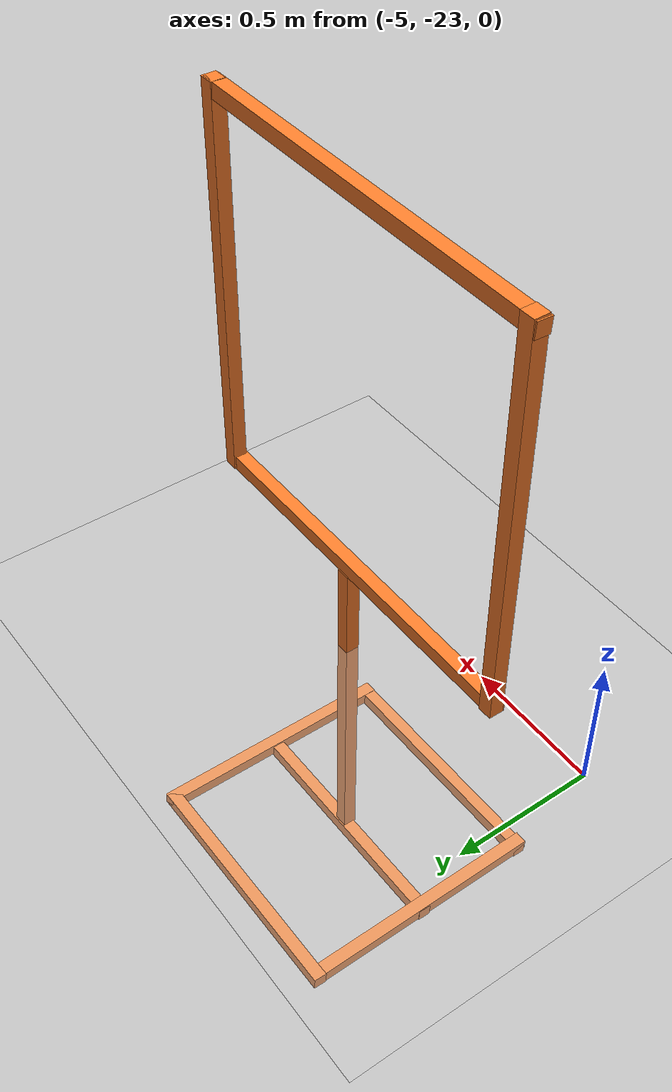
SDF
<sdf version="1.6">
 <world name="default">
  <model name="ground_plane">
   <static>1</static>
   <link name="link">
    <collision name="collision">
     <geometry><plane><normal>0 0 1</normal><size>100 100</size></plane></geometry>
     <surface><friction><ode><mu>100</mu><mu2>50</mu2></ode></friction></surface>
    </collision>
    <visual name="visual">
     <cast_shadows>0</cast_shadows>
     <geometry><plane><normal>0 0 1</normal><size>100 100</size></plane></geometry>
     <material>
      <script><uri>file://media/materials/scripts/gazebo.material</uri><name>Gazebo/Grey</name></script>
     </material>
    </visual>
    <velocity_decay><linear>0</linear><angular>0</angular></velocity_decay>
   </link>
  </model>
  <model name="closed_gate_clone_clone_0">
   <link name="link">
    <inertial>
     <mass>1</mass>
     <inertia>
      <ixx>0.166667</ixx>
      <ixy>0</ixy>
      <ixz>0</ixz>
      <iyy>0.166667</iyy>
      <iyz>0</iyz>
      <izz>0.166667</izz>
     </inertia>
    </inertial>
    <pose>0.404756 -0.715724 1.41623 0 -0 0</pose>
    <visual name="visual">
     <geometry><box><size>0.05 0.05 1.4</size></box></geometry>
     <material>
      <script><name>Gazebo/Grey</name><uri>file://media/materials/scripts/gazebo.material</uri></script>
      <shader type="vertex"><normal_map>__default__</normal_map></shader>
      <ambient>0.976 0.484 0.164 1</ambient>
      <diffuse>0.976 0.484 0.164 1</diffuse>
      <specular>0.01 0.01 0.01 1</specular>
      <emissive>0 0 0 1</emissive>
     </material>
    </visual>
    <collision name="collision">
     <geometry><box><size>0.05 0.05 1.4</size></box></geometry>
     <surface>
      <friction>
       <ode><mu>1</mu><mu2>1</mu2><fdir1>0 0 0</fdir1><slip1>0</slip1><slip2>0</slip2></ode>
       <torsional>
        <coefficient>1</coefficient>
        <patch_radius>0</patch_radius>
        <surface_radius>0</surface_radius>
        <use_patch_radius>1</use_patch_radius>
        <ode><slip>0</slip></ode>
       </torsional>
      </friction>
      <bounce><restitution_coefficient>0</restitution_coefficient><threshold>1e+06</threshold></bounce>
      <contact>
       <collide_without_contact>0</collide_without_contact>
       <collide_without_contact_bitmask>1</collide_without_contact_bitmask>
       <collide_bitmask>1</collide_bitmask>
       <ode>
        <soft_cfm>0</soft_cfm>
        <soft_erp>0.2</soft_erp>
        <kp>1e+13</kp>
        <kd>1</kd>
        <max_vel>0.01</max_vel>
        <min_depth>0</min_depth>
       </ode>
       <bullet>
        <split_impulse>1</split_impulse>
        <split_impulse_penetration_threshold>-0.01</split_impulse_penetration_threshold>
        <soft_cfm>0</soft_cfm>
        <soft_erp>0.2</soft_erp>
        <kp>1e+13</kp>
        <kd>1</kd>
       </bullet>
      </contact>
     </surface>
    </collision>
   </link>
   <link name="link_clone_0_clone_0">
    <inertial>
     <mass>1</mass>
     <inertia>
      <ixx>0.166667</ixx>
      <ixy>0</ixy>
      <ixz>0</ixz>
      <iyy>0.166667</iyy>
      <iyz>0</iyz>
      <izz>0.166667</izz>
     </inertia>
    </inertial>
    <pose>1.11096 -0.693594 -0.667388 -1.57955 0.044957 -1.56415</pose>
    <visual name="visual">
     <geometry><box><size>0.05 0.05 1</size></box></geometry>
     <material>
      <script><name>Gazebo/Grey</name><uri>file://media/materials/scripts/gazebo.material</uri></script>
      <shader type="vertex"><normal_map>__default__</normal_map></shader>
      <ambient>0.976 0.484 0.164 1</ambient>
      <diffuse>0.976 0.484 0.164 1</diffuse>
      <specular>0.01 0.01 0.01 1</specular>
      <emissive>0 0 0 1</emissive>
     </material>
    </visual>
    <collision name="collision">
     <geometry><box><size>0.05 0.05 1</size></box></geometry>
     <surface>
      <friction>
       <ode><mu>1</mu><mu2>1</mu2><fdir1>0 0 0</fdir1><slip1>0</slip1><slip2>0</slip2></ode>
       <torsional>
        <coefficient>1</coefficient>
        <patch_radius>0</patch_radius>
        <surface_radius>0</surface_radius>
        <use_patch_radius>1</use_patch_radius>
        <ode><slip>0</slip></ode>
       </torsional>
      </friction>
      <bounce><restitution_coefficient>0</restitution_coefficient><threshold>1e+06</threshold></bounce>
      <contact>
       <collide_without_contact>0</collide_without_contact>
       <collide_without_contact_bitmask>1</collide_without_contact_bitmask>
       <collide_bitmask>1</collide_bitmask>
       <ode>
        <soft_cfm>0</soft_cfm>
        <soft_erp>0.2</soft_erp>
        <kp>1e+13</kp>
        <kd>1</kd>
        <max_vel>0.01</max_vel>
        <min_depth>0</min_depth>
       </ode>
       <bullet>
        <split_impulse>1</split_impulse>
        <split_impulse_penetration_threshold>-0.01</split_impulse_penetration_threshold>
        <soft_cfm>0</soft_cfm>
        <soft_erp>0.2</soft_erp>
        <kp>1e+13</kp>
        <kd>1</kd>
       </bullet>
      </contact>
     </surface>
    </collision>
   </link>
   <link name="link_clone_0_clone_0_clone">
    <inertial>
     <mass>1</mass>
     <inertia>
      <ixx>0.166667</ixx>
      <ixy>0</ixy>
      <ixz>0</ixz>
      <iyy>0.166667</iyy>
      <iyz>0</iyz>
      <izz>0.166667</izz>
     </inertia>
    </inertial>
    <pose>0.637485 -0.695511 -0.656732 -1.55146 -0.019345 0.017432</pose>
    <visual name="visual">
     <geometry><box><size>0.05 0.05 1</size></box></geometry>
     <material>
      <script><name>Gazebo/Grey</name><uri>file://media/materials/scripts/gazebo.material</uri></script>
      <shader type="vertex"><normal_map>__default__</normal_map></shader>
      <ambient>0.976 0.484 0.164 1</ambient>
      <diffuse>0.976 0.484 0.164 1</diffuse>
      <specular>0.01 0.01 0.01 1</specular>
      <emissive>0 0 0 1</emissive>
     </material>
    </visual>
    <collision name="collision">
     <geometry><box><size>0.05 0.05 1</size></box></geometry>
     <surface>
      <friction>
       <ode><mu>1</mu><mu2>1</mu2><fdir1>0 0 0</fdir1><slip1>0</slip1><slip2>0</slip2></ode>
       <torsional>
        <coefficient>1</coefficient>
        <patch_radius>0</patch_radius>
        <surface_radius>0</surface_radius>
        <use_patch_radius>1</use_patch_radius>
        <ode><slip>0</slip></ode>
       </torsional>
      </friction>
      <bounce><restitution_coefficient>0</restitution_coefficient><threshold>1e+06</threshold></bounce>
      <contact>
       <collide_without_contact>0</collide_without_contact>
       <collide_without_contact_bitmask>1</collide_without_contact_bitmask>
       <collide_bitmask>1</collide_bitmask>
       <ode>
        <soft_cfm>0</soft_cfm>
        <soft_erp>0.2</soft_erp>
        <kp>1e+13</kp>
        <kd>1</kd>
        <max_vel>0.01</max_vel>
        <min_depth>0</min_depth>
       </ode>
       <bullet>
        <split_impulse>1</split_impulse>
        <split_impulse_penetration_threshold>-0.01</split_impulse_penetration_threshold>
        <soft_cfm>0</soft_cfm>
        <soft_erp>0.2</soft_erp>
        <kp>1e+13</kp>
        <kd>1</kd>
       </bullet>
      </contact>
     </surface>
    </collision>
   </link>
   <link name="link_clone_0_clone_0_clone_0">
    <inertial>
     <mass>1</mass>
     <inertia>
      <ixx>0.166667</ixx>
      <ixy>0</ixy>
      <ixz>0</ixz>
      <iyy>0.166667</iyy>
      <iyz>0</iyz>
      <izz>0.166667</izz>
     </inertia>
    </inertial>
    <pose>1.12077 -1.16283 -0.677317 -1.57839 0.053451 -1.56287</pose>
    <visual name="visual">
     <geometry><box><size>0.05 0.05 1</size></box></geometry>
     <material>
      <script><name>Gazebo/Grey</name><uri>file://media/materials/scripts/gazebo.material</uri></script>
      <shader type="vertex"><normal_map>__default__</normal_map></shader>
      <ambient>0.976 0.484 0.164 1</ambient>
      <diffuse>0.976 0.484 0.164 1</diffuse>
      <specular>0.01 0.01 0.01 1</specular>
      <emissive>0 0 0 1</emissive>
     </material>
    </visual>
    <collision name="collision">
     <geometry><box><size>0.05 0.05 1</size></box></geometry>
     <surface>
      <friction>
       <ode><mu>1</mu><mu2>1</mu2><fdir1>0 0 0</fdir1><slip1>0</slip1><slip2>0</slip2></ode>
       <torsional>
        <coefficient>1</coefficient>
        <patch_radius>0</patch_radius>
        <surface_radius>0</surface_radius>
        <use_patch_radius>1</use_patch_radius>
        <ode><slip>0</slip></ode>
       </torsional>
      </friction>
      <bounce><restitution_coefficient>0</restitution_coefficient><threshold>1e+06</threshold></bounce>
      <contact>
       <collide_without_contact>0</collide_without_contact>
       <collide_without_contact_bitmask>1</collide_without_contact_bitmask>
       <collide_bitmask>1</collide_bitmask>
       <ode>
        <soft_cfm>0</soft_cfm>
        <soft_erp>0.2</soft_erp>
        <kp>1e+13</kp>
        <kd>1</kd>
        <max_vel>0.01</max_vel>
        <min_depth>0</min_depth>
       </ode>
       <bullet>
        <split_impulse>1</split_impulse>
        <split_impulse_penetration_threshold>-0.01</split_impulse_penetration_threshold>
        <soft_cfm>0</soft_cfm>
        <soft_erp>0.2</soft_erp>
        <kp>1e+13</kp>
        <kd>1</kd>
       </bullet>
      </contact>
     </surface>
    </collision>
   </link>
   <link name="link_clone_0_clone_0_clone_2">
    <inertial>
     <mass>1</mass>
     <inertia>
      <ixx>0.166667</ixx>
      <ixy>0</ixy>
      <ixz>0</ixz>
      <iyy>0.166667</iyy>
      <iyz>0</iyz>
      <izz>0.166667</izz>
     </inertia>
    </inertial>
    <pose>1.10088 -0.214462 -0.645898 -1.57451 0.053447 -1.56287</pose>
    <visual name="visual">
     <geometry><box><size>0.05 0.05 1</size></box></geometry>
     <material>
      <script><name>Gazebo/Grey</name><uri>file://media/materials/scripts/gazebo.material</uri></script>
      <shader type="vertex"><normal_map>__default__</normal_map></shader>
      <ambient>0.976 0.484 0.164 1</ambient>
      <diffuse>0.976 0.484 0.164 1</diffuse>
      <specular>0.01 0.01 0.01 1</specular>
      <emissive>0 0 0 1</emissive>
     </material>
    </visual>
    <collision name="collision">
     <geometry><box><size>0.05 0.05 1</size></box></geometry>
     <surface>
      <friction>
       <ode><mu>1</mu><mu2>1</mu2><fdir1>0 0 0</fdir1><slip1>0</slip1><slip2>0</slip2></ode>
       <torsional>
        <coefficient>1</coefficient>
        <patch_radius>0</patch_radius>
        <surface_radius>0</surface_radius>
        <use_patch_radius>1</use_patch_radius>
        <ode><slip>0</slip></ode>
       </torsional>
      </friction>
      <bounce><restitution_coefficient>0</restitution_coefficient><threshold>1e+06</threshold></bounce>
      <contact>
       <collide_without_contact>0</collide_without_contact>
       <collide_without_contact_bitmask>1</collide_without_contact_bitmask>
       <collide_bitmask>1</collide_bitmask>
       <ode>
        <soft_cfm>0</soft_cfm>
        <soft_erp>0.2</soft_erp>
        <kp>1e+13</kp>
        <kd>1</kd>
        <max_vel>0.01</max_vel>
        <min_depth>0</min_depth>
       </ode>
       <bullet>
        <split_impulse>1</split_impulse>
        <split_impulse_penetration_threshold>-0.01</split_impulse_penetration_threshold>
        <soft_cfm>0</soft_cfm>
        <soft_erp>0.2</soft_erp>
        <kp>1e+13</kp>
        <kd>1</kd>
       </bullet>
      </contact>
     </surface>
    </collision>
   </link>
   <link name="link_clone_0_clone_0_clone_clone">
    <inertial>
     <mass>1</mass>
     <inertia>
      <ixx>0.166667</ixx>
      <ixy>0</ixy>
      <ixz>0</ixz>
      <iyy>0.166667</iyy>
      <iyz>0</iyz>
      <izz>0.166667</izz>
     </inertia>
    </inertial>
    <pose>1.59453 -0.684923 -0.663241 -1.53838 -0.023075 0.018345</pose>
    <visual name="visual">
     <geometry><box><size>0.05 0.05 1</size></box></geometry>
     <material>
      <script><name>Gazebo/Grey</name><uri>file://media/materials/scripts/gazebo.material</uri></script>
      <shader type="vertex"><normal_map>__default__</normal_map></shader>
      <ambient>0.976 0.484 0.164 1</ambient>
      <diffuse>0.976 0.484 0.164 1</diffuse>
      <specular>0.01 0.01 0.01 1</specular>
      <emissive>0 0 0 1</emissive>
     </material>
    </visual>
    <collision name="collision">
     <geometry><box><size>0.05 0.05 1</size></box></geometry>
     <surface>
      <friction>
       <ode><mu>1</mu><mu2>1</mu2><fdir1>0 0 0</fdir1><slip1>0</slip1><slip2>0</slip2></ode>
       <torsional>
        <coefficient>1</coefficient>
        <patch_radius>0</patch_radius>
        <surface_radius>0</surface_radius>
        <use_patch_radius>1</use_patch_radius>
        <ode><slip>0</slip></ode>
       </torsional>
      </friction>
      <bounce><restitution_coefficient>0</restitution_coefficient><threshold>1e+06</threshold></bounce>
      <contact>
       <collide_without_contact>0</collide_without_contact>
       <collide_without_contact_bitmask>1</collide_without_contact_bitmask>
       <collide_bitmask>1</collide_bitmask>
       <ode>
        <soft_cfm>0</soft_cfm>
        <soft_erp>0.2</soft_erp>
        <kp>1e+13</kp>
        <kd>1</kd>
        <max_vel>0.01</max_vel>
        <min_depth>0</min_depth>
       </ode>
       <bullet>
        <split_impulse>1</split_impulse>
        <split_impulse_penetration_threshold>-0.01</split_impulse_penetration_threshold>
        <soft_cfm>0</soft_cfm>
        <soft_erp>0.2</soft_erp>
        <kp>1e+13</kp>
        <kd>1</kd>
       </bullet>
      </contact>
     </surface>
    </collision>
   </link>
   <link name="link_clone_0_clone_1">
    <inertial>
     <mass>1</mass>
     <inertia>
      <ixx>0.166667</ixx>
      <ixy>0</ixy>
      <ixz>0</ixz>
      <iyy>0.166667</iyy>
      <iyz>0</iyz>
      <izz>0.166667</izz>
     </inertia>
    </inertial>
    <pose>1.08198 -0.717602 0.744079 -1.56201 0.04483 -1.56244</pose>
    <visual name="visual">
     <geometry><box><size>0.05 0.05 1.4</size></box></geometry>
     <material>
      <script><name>Gazebo/Grey</name><uri>file://media/materials/scripts/gazebo.material</uri></script>
      <shader type="vertex"><normal_map>__default__</normal_map></shader>
      <ambient>0.976 0.484 0.164 1</ambient>
      <diffuse>0.976 0.484 0.164 1</diffuse>
      <specular>0.01 0.01 0.01 1</specular>
      <emissive>0 0 0 1</emissive>
     </material>
    </visual>
    <collision name="collision">
     <geometry><box><size>0.05 0.05 1.4</size></box></geometry>
     <surface>
      <friction>
       <ode><mu>1</mu><mu2>1</mu2><fdir1>0 0 0</fdir1><slip1>0</slip1><slip2>0</slip2></ode>
       <torsional>
        <coefficient>1</coefficient>
        <patch_radius>0</patch_radius>
        <surface_radius>0</surface_radius>
        <use_patch_radius>1</use_patch_radius>
        <ode><slip>0</slip></ode>
       </torsional>
      </friction>
      <bounce><restitution_coefficient>0</restitution_coefficient><threshold>1e+06</threshold></bounce>
      <contact>
       <collide_without_contact>0</collide_without_contact>
       <collide_without_contact_bitmask>1</collide_without_contact_bitmask>
       <collide_bitmask>1</collide_bitmask>
       <ode>
        <soft_cfm>0</soft_cfm>
        <soft_erp>0.2</soft_erp>
        <kp>1e+13</kp>
        <kd>1</kd>
        <max_vel>0.01</max_vel>
        <min_depth>0</min_depth>
       </ode>
       <bullet>
        <split_impulse>1</split_impulse>
        <split_impulse_penetration_threshold>-0.01</split_impulse_penetration_threshold>
        <soft_cfm>0</soft_cfm>
        <soft_erp>0.2</soft_erp>
        <kp>1e+13</kp>
        <kd>1</kd>
       </bullet>
      </contact>
     </surface>
    </collision>
   </link>
   <link name="link_clone_0_clone_1_clone">
    <inertial>
     <mass>1</mass>
     <inertia>
      <ixx>0.166667</ixx>
      <ixy>0</ixy>
      <ixz>0</ixz>
      <iyy>0.166667</iyy>
      <iyz>0</iyz>
      <izz>0.166667</izz>
     </inertia>
    </inertial>
    <pose>1.07529 -0.719849 2.09328 -1.55888 0.053444 -1.57124</pose>
    <visual name="visual">
     <geometry><box><size>0.05 0.05 1.4</size></box></geometry>
     <material>
      <script><name>Gazebo/Grey</name><uri>file://media/materials/scripts/gazebo.material</uri></script>
      <shader type="vertex"><normal_map>__default__</normal_map></shader>
      <ambient>0.976 0.484 0.164 1</ambient>
      <diffuse>0.976 0.484 0.164 1</diffuse>
      <specular>0.01 0.01 0.01 1</specular>
      <emissive>0 0 0 1</emissive>
     </material>
    </visual>
    <collision name="collision">
     <geometry><box><size>0.05 0.05 1.4</size></box></geometry>
     <surface>
      <friction>
       <ode><mu>1</mu><mu2>1</mu2><fdir1>0 0 0</fdir1><slip1>0</slip1><slip2>0</slip2></ode>
       <torsional>
        <coefficient>1</coefficient>
        <patch_radius>0</patch_radius>
        <surface_radius>0</surface_radius>
        <use_patch_radius>1</use_patch_radius>
        <ode><slip>0</slip></ode>
       </torsional>
      </friction>
      <bounce><restitution_coefficient>0</restitution_coefficient><threshold>1e+06</threshold></bounce>
      <contact>
       <collide_without_contact>0</collide_without_contact>
       <collide_without_contact_bitmask>1</collide_without_contact_bitmask>
       <collide_bitmask>1</collide_bitmask>
       <ode>
        <soft_cfm>0</soft_cfm>
        <soft_erp>0.2</soft_erp>
        <kp>1e+13</kp>
        <kd>1</kd>
        <max_vel>0.01</max_vel>
        <min_depth>0</min_depth>
       </ode>
       <bullet>
        <split_impulse>1</split_impulse>
        <split_impulse_penetration_threshold>-0.01</split_impulse_penetration_threshold>
        <soft_cfm>0</soft_cfm>
        <soft_erp>0.2</soft_erp>
        <kp>1e+13</kp>
        <kd>1</kd>
       </bullet>
      </contact>
     </surface>
    </collision>
   </link>
   <link name="link_clone_1">
    <inertial>
     <mass>1</mass>
     <inertia>
      <ixx>0.166667</ixx>
      <ixy>0</ixy>
      <ixz>0</ixz>
      <iyy>0.166667</iyy>
      <iyz>0</iyz>
      <izz>0.166667</izz>
     </inertia>
    </inertial>
    <pose>1.11167 -0.706269 0.02254 0.008527 -0.003582 0.001077</pose>
    <visual name="visual">
     <geometry><box><size>0.05 0.05 1.4</size></box></geometry>
     <material>
      <script><name>Gazebo/Grey</name><uri>file://media/materials/scripts/gazebo.material</uri></script>
      <shader type="vertex"><normal_map>__default__</normal_map></shader>
      <ambient>0.976 0.484 0.164 1</ambient>
      <diffuse>0.976 0.484 0.164 1</diffuse>
      <specular>0.01 0.01 0.01 1</specular>
      <emissive>0 0 0 1</emissive>
     </material>
    </visual>
    <collision name="collision">
     <geometry><box><size>0.05 0.05 1.4</size></box></geometry>
     <surface>
      <friction>
       <ode><mu>1</mu><mu2>1</mu2><fdir1>0 0 0</fdir1><slip1>0</slip1><slip2>0</slip2></ode>
       <torsional>
        <coefficient>1</coefficient>
        <patch_radius>0</patch_radius>
        <surface_radius>0</surface_radius>
        <use_patch_radius>1</use_patch_radius>
        <ode><slip>0</slip></ode>
       </torsional>
      </friction>
      <bounce><restitution_coefficient>0</restitution_coefficient><threshold>1e+06</threshold></bounce>
      <contact>
       <collide_without_contact>0</collide_without_contact>
       <collide_without_contact_bitmask>1</collide_without_contact_bitmask>
       <collide_bitmask>1</collide_bitmask>
       <ode>
        <soft_cfm>0</soft_cfm>
        <soft_erp>0.2</soft_erp>
        <kp>1e+13</kp>
        <kd>1</kd>
        <max_vel>0.01</max_vel>
        <min_depth>0</min_depth>
       </ode>
       <bullet>
        <split_impulse>1</split_impulse>
        <split_impulse_penetration_threshold>-0.01</split_impulse_penetration_threshold>
        <soft_cfm>0</soft_cfm>
        <soft_erp>0.2</soft_erp>
        <kp>1e+13</kp>
        <kd>1</kd>
       </bullet>
      </contact>
     </surface>
    </collision>
   </link>
   <link name="link_clone_7">
    <inertial>
     <mass>1</mass>
     <inertia>
      <ixx>0.166667</ixx>
      <ixy>0</ixy>
      <ixz>0</ixz>
      <iyy>0.166667</iyy>
      <iyz>0</iyz>
      <izz>0.166667</izz>
     </inertia>
    </inertial>
    <pose>1.75876 -0.711707 1.42733 0.008527 -0.003582 0.001077</pose>
    <visual name="visual">
     <geometry><box><size>0.05 0.05 1.4</size></box></geometry>
     <material>
      <script><name>Gazebo/Grey</name><uri>file://media/materials/scripts/gazebo.material</uri></script>
      <shader type="vertex"><normal_map>__default__</normal_map></shader>
      <ambient>0.976 0.484 0.164 1</ambient>
      <diffuse>0.976 0.484 0.164 1</diffuse>
      <specular>0.01 0.01 0.01 1</specular>
      <emissive>0 0 0 1</emissive>
     </material>
    </visual>
    <collision name="collision">
     <geometry><box><size>0.05 0.05 1.4</size></box></geometry>
     <surface>
      <friction>
       <ode><mu>1</mu><mu2>1</mu2><fdir1>0 0 0</fdir1><slip1>0</slip1><slip2>0</slip2></ode>
       <torsional>
        <coefficient>1</coefficient>
        <patch_radius>0</patch_radius>
        <surface_radius>0</surface_radius>
        <use_patch_radius>1</use_patch_radius>
        <ode><slip>0</slip></ode>
       </torsional>
      </friction>
      <bounce><restitution_coefficient>0</restitution_coefficient><threshold>1e+06</threshold></bounce>
      <contact>
       <collide_without_contact>0</collide_without_contact>
       <collide_without_contact_bitmask>1</collide_without_contact_bitmask>
       <collide_bitmask>1</collide_bitmask>
       <ode>
        <soft_cfm>0</soft_cfm>
        <soft_erp>0.2</soft_erp>
        <kp>1e+13</kp>
        <kd>1</kd>
        <max_vel>0.01</max_vel>
        <min_depth>0</min_depth>
       </ode>
       <bullet>
        <split_impulse>1</split_impulse>
        <split_impulse_penetration_threshold>-0.01</split_impulse_penetration_threshold>
        <soft_cfm>0</soft_cfm>
        <soft_erp>0.2</soft_erp>
        <kp>1e+13</kp>
        <kd>1</kd>
       </bullet>
      </contact>
     </surface>
    </collision>
   </link>
   <static>1</static>
   <pose>-5.23394 -22.0154 -0.36646 0 -0 0</pose>
  </model>
 </world>
</sdf>
